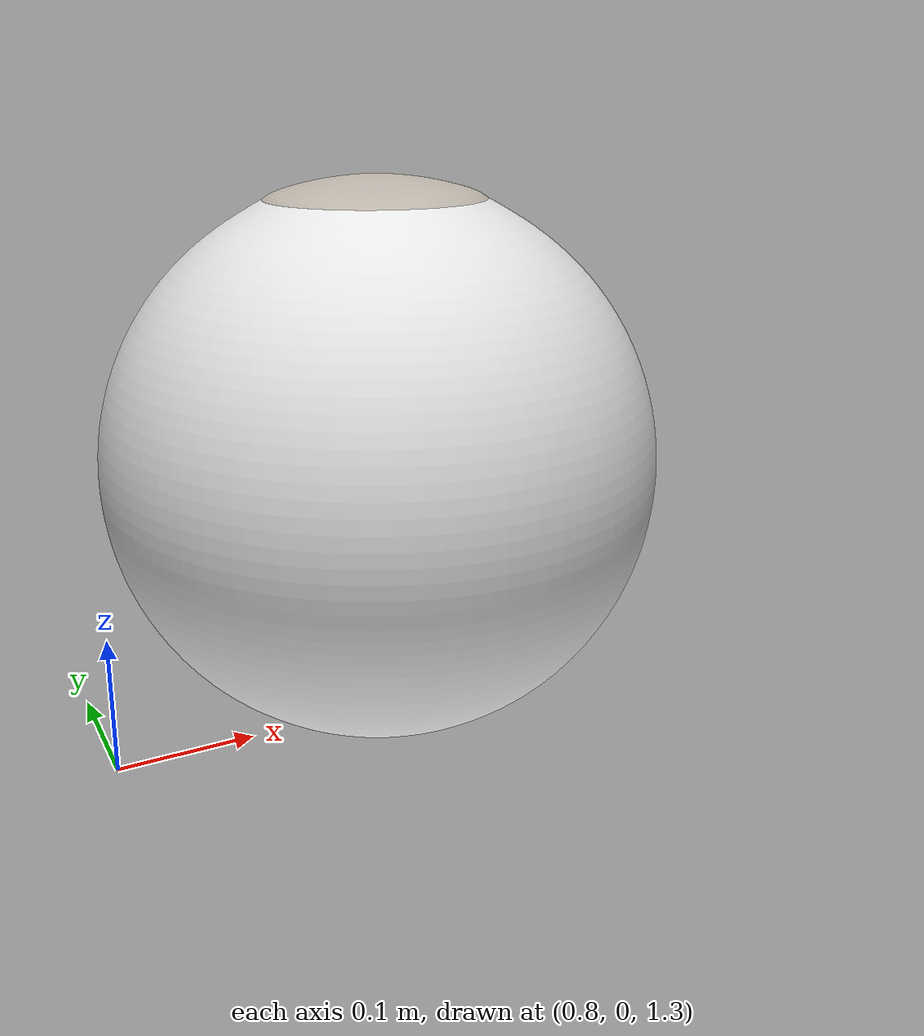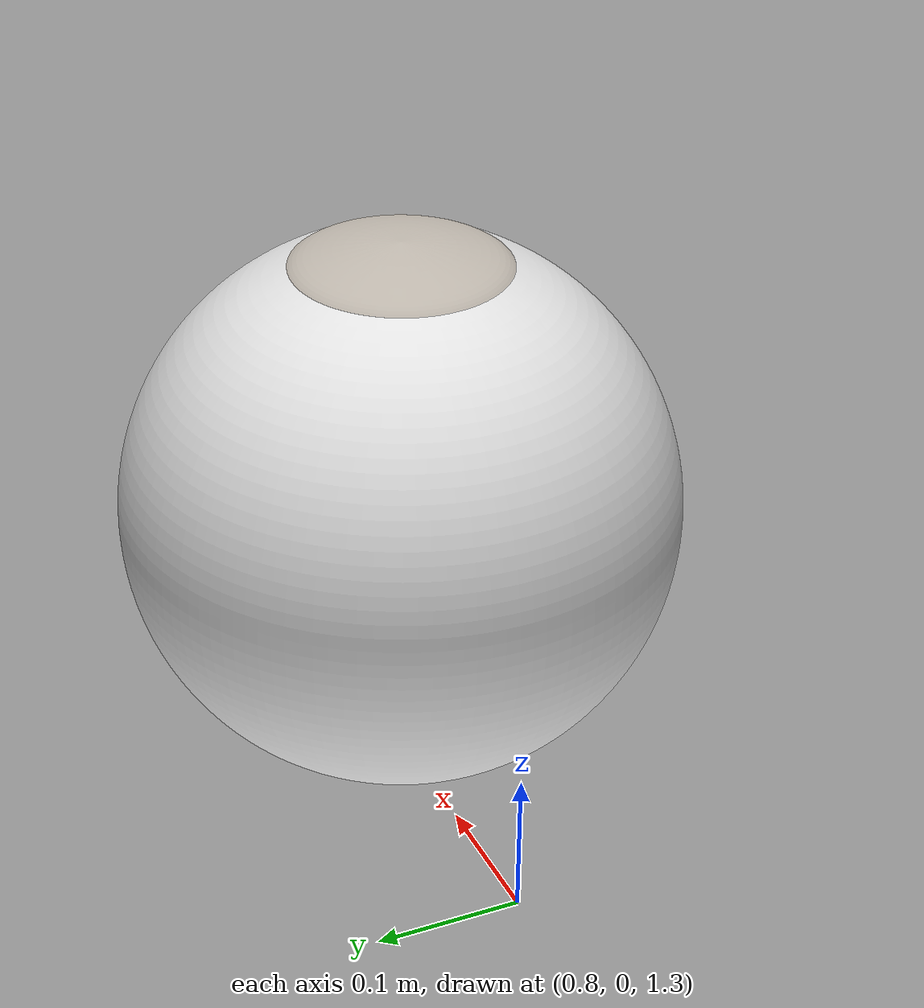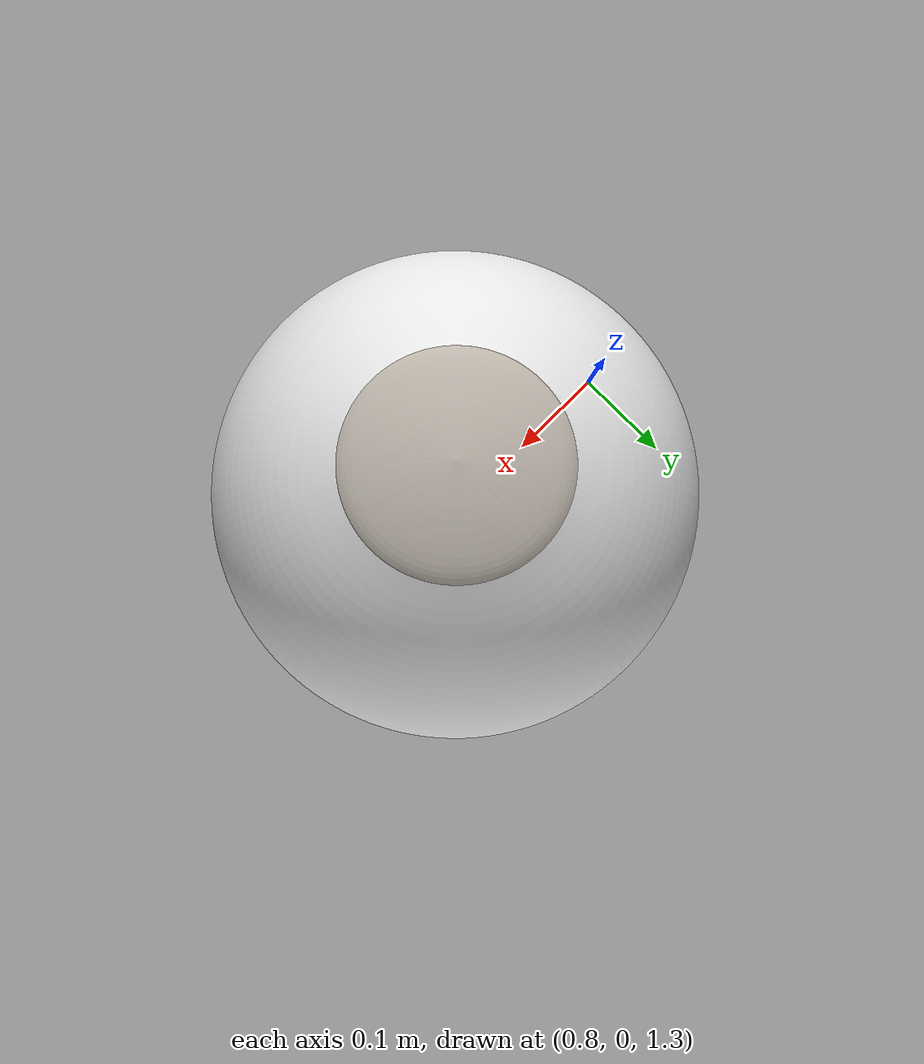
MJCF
<mujoco model="eyeball">
  <default>
    <default class="visual_eye">
      <geom conaffinity="0" contype="0" group="2" pos="1 0 1.5" type="mesh"></geom>
    </default>
    <default class="collison_eye">
      <geom group="3" pos="1 0 1.5" type="mesh"></geom>
    </default>
  </default>
  <asset>
    <texture file="eyeball/Eye_D.png" name="Eye_D" type="2d"></texture>
    <material name="EyeBlack" shininess="1.0" specular="0.0" texture="Eye_D"></material>
    <material name="Eye_Iris" shininess="0.017647059" specular="1.0" texture="Eye_D"></material>
    <material name="Eye_Tranz.001" shininess="0.70541399" specular="0.439189" texture="Eye_D"></material>
    <material name="Eye_white" shininess="0.550955445" specular="0.627027" texture="Eye_D"></material>
    <mesh file="eyeball/eyeball_0.obj" scale="0.1 0.1 0.1"></mesh>
    <mesh file="eyeball/eyeball_1.obj" scale="0.1 0.1 0.1"></mesh>
    <mesh file="eyeball/eyeball_2.obj" scale="0.1 0.1 0.1"></mesh>
    <mesh file="eyeball/eyeball_3.obj" scale="0.1 0.1 0.1"></mesh>
  </asset>
  <worldbody>
    <body name="eyeball">
      <freejoint></freejoint>
      <geom class="visual_eye" material="Eye_white" mesh="eyeball_0"></geom>
      <geom class="visual_eye" material="EyeBlack" mesh="eyeball_1"></geom>
      <geom class="visual_eye" material="Eye_Iris" mesh="eyeball_2"></geom>
      <geom class="visual_eye" material="Eye_Tranz.001" mesh="eyeball_3"></geom>
      <geom class="collison_eye" mesh="eyeball_0"></geom>
      <geom class="collison_eye" mesh="eyeball_1"></geom>
      <geom class="collison_eye" mesh="eyeball_2"></geom>
      <geom class="collison_eye" mesh="eyeball_3"></geom>
    </body>
  </worldbody>
</mujoco>
